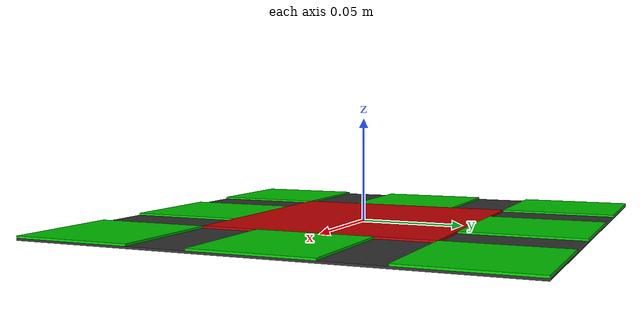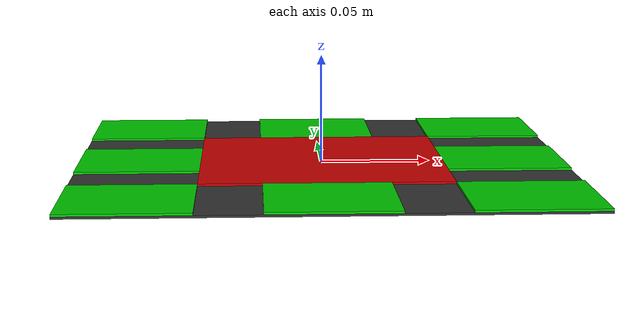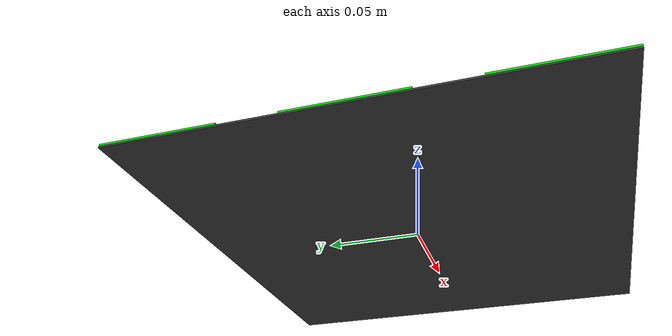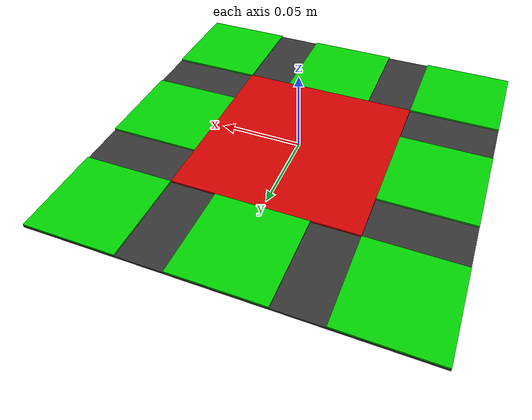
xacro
<robot name="aruco" xmlns:xacro="http://wiki.ros.org/xacro">

    <!-- arguments -->

    <xacro:arg name="id"            default="0" />
    <xacro:arg name="marker_prefix" default="aruco_" />
    <xacro:arg name="corner_prefix" default="corner_" />
    <xacro:arg name="length"        default="0.225" />

    <!-- constants -->

    <xacro:property name="id"            value="$(arg id)" />
    <xacro:property name="marker_prefix" value="$(arg marker_prefix)" />
    <xacro:property name="corner_prefix" value="$(arg corner_prefix)" />
    <xacro:property name="length"        value="$(arg length)" />

    <xacro:property name="marker_l"  value="${marker_prefix}${id}" />
    <xacro:property name="marker_m"  value="${marker_prefix}${id + 1}" />
    <xacro:property name="marker_s0" value="${marker_prefix}${id + 2}" />
    <xacro:property name="marker_s1" value="${marker_prefix}${id + 3}" />
    <xacro:property name="marker_s2" value="${marker_prefix}${id + 4}" />
    <xacro:property name="marker_s3" value="${marker_prefix}${id + 5}" />
    <xacro:property name="marker_s4" value="${marker_prefix}${id + 6}" />
    <xacro:property name="marker_s5" value="${marker_prefix}${id + 7}" />
    <xacro:property name="marker_s6" value="${marker_prefix}${id + 8}" />
    <xacro:property name="marker_s7" value="${marker_prefix}${id + 9}" />

    <xacro:property name="corner_l"  value="${corner_prefix}${id}" />
    <xacro:property name="corner_m"  value="${corner_prefix}${id + 1}" />
    <xacro:property name="corner_s0" value="${corner_prefix}${id + 2}" />
    <xacro:property name="corner_s1" value="${corner_prefix}${id + 3}" />
    <xacro:property name="corner_s2" value="${corner_prefix}${id + 4}" />
    <xacro:property name="corner_s3" value="${corner_prefix}${id + 5}" />
    <xacro:property name="corner_s4" value="${corner_prefix}${id + 6}" />
    <xacro:property name="corner_s5" value="${corner_prefix}${id + 7}" />
    <xacro:property name="corner_s6" value="${corner_prefix}${id + 8}" />
    <xacro:property name="corner_s7" value="${corner_prefix}${id + 9}" />

    <xacro:property name="length_125" value="${length * 0.125}" />
    <xacro:property name="length_25"  value="${length * 0.25}" />
    <xacro:property name="length_375" value="${length * 0.375}" />
    <xacro:property name="length_50"  value="${length * 0.5}" />
    <xacro:property name="length_75"  value="${length * 0.75}" />

    <!-- marker materials -->

    <xacro:macro name="make_material"
                 params="name rgba">
        <material name="${name}">
            <color rgba="${rgba}" />
        </material>
    </xacro:macro>

    <xacro:make_material name="black" rgba="0.2 0.2 0.2 1" />
    <xacro:make_material name="white" rgba="1.0 1.0 1.0 1" />
    <xacro:make_material name="red"   rgba="0.8 0.0 0.0 1" />
    <xacro:make_material name="green" rgba="0.0 0.8 0.0 1" />

    <!-- marker links -->

    <xacro:macro name="make_marker_link"
                 params="name
                         z_offset
                         size
                         material">
        <link name="${name}">
            <visual>
                <origin xyz="0 0 ${z_offset}" />
                <geometry>
                    <box size="${size}" />
                </geometry>
                <material name="${material}" />
            </visual>
        </link>
    </xacro:macro>

    <xacro:make_marker_link name="${marker_l}"  z_offset="0"     size="${length}    ${length}    0.001" material="black" />
    <xacro:make_marker_link name="${marker_m}"  z_offset="0.001" size="${length_50} ${length_50} 0.001" material="red" />
    <xacro:make_marker_link name="${marker_s0}" z_offset="0.001" size="${length_25} ${length_25} 0.001" material="green" />
    <xacro:make_marker_link name="${marker_s1}" z_offset="0.001" size="${length_25} ${length_25} 0.001" material="green" />
    <xacro:make_marker_link name="${marker_s2}" z_offset="0.001" size="${length_25} ${length_25} 0.001" material="green" />
    <xacro:make_marker_link name="${marker_s3}" z_offset="0.001" size="${length_25} ${length_25} 0.001" material="green" />
    <xacro:make_marker_link name="${marker_s4}" z_offset="0.001" size="${length_25} ${length_25} 0.001" material="green" />
    <xacro:make_marker_link name="${marker_s5}" z_offset="0.001" size="${length_25} ${length_25} 0.001" material="green" />
    <xacro:make_marker_link name="${marker_s6}" z_offset="0.001" size="${length_25} ${length_25} 0.001" material="green" />
    <xacro:make_marker_link name="${marker_s7}" z_offset="0.001" size="${length_25} ${length_25} 0.001" material="green" />

    <!-- joints from base to markers -->

    <xacro:macro name="make_fixed_joint"
                 params="xyz
                         parent
                         child">
        <joint name="${parent}_to_${child}" type="fixed">
            <origin xyz="${xyz}" />
            <parent link="${parent}" />
            <child link="${child}" />
        </joint>
    </xacro:macro>

    <xacro:make_fixed_joint xyz="0              0              0" parent="${marker_l}" child="${marker_m}" />
    <xacro:make_fixed_joint xyz="${-length_375} ${length_375}  0" parent="${marker_l}" child="${marker_s0}" />
    <xacro:make_fixed_joint xyz="0              ${length_375}  0" parent="${marker_l}" child="${marker_s1}" />
    <xacro:make_fixed_joint xyz="${length_375}  ${length_375}  0" parent="${marker_l}" child="${marker_s2}" />
    <xacro:make_fixed_joint xyz="${-length_375} 0              0" parent="${marker_l}" child="${marker_s3}" />
    <xacro:make_fixed_joint xyz="${length_375}  0              0" parent="${marker_l}" child="${marker_s4}" />
    <xacro:make_fixed_joint xyz="${-length_375} ${-length_375} 0" parent="${marker_l}" child="${marker_s5}" />
    <xacro:make_fixed_joint xyz="0              ${-length_375} 0" parent="${marker_l}" child="${marker_s6}" />
    <xacro:make_fixed_joint xyz="${length_375}  ${-length_375} 0" parent="${marker_l}" child="${marker_s7}" />

    <!-- corner of markers -->

    <xacro:macro name="make_corner"
                 params="name
                         xy_offset
                         marker">
        <link name="${name}" />
        <xacro:make_fixed_joint xyz="${xy_offset} ${xy_offset} 0" parent="${marker}" child="${name}" />
    </xacro:macro>

    <xacro:make_corner name="${corner_l}"  xy_offset="${length_50}"  marker="${marker_l}" />
    <xacro:make_corner name="${corner_m}"  xy_offset="${length_25}"  marker="${marker_m}" />
    <xacro:make_corner name="${corner_s0}" xy_offset="${length_125}" marker="${marker_s0}" />
    <xacro:make_corner name="${corner_s1}" xy_offset="${length_125}" marker="${marker_s1}" />
    <xacro:make_corner name="${corner_s2}" xy_offset="${length_125}" marker="${marker_s2}" />
    <xacro:make_corner name="${corner_s3}" xy_offset="${length_125}" marker="${marker_s3}" />
    <xacro:make_corner name="${corner_s4}" xy_offset="${length_125}" marker="${marker_s4}" />
    <xacro:make_corner name="${corner_s5}" xy_offset="${length_125}" marker="${marker_s5}" />
    <xacro:make_corner name="${corner_s6}" xy_offset="${length_125}" marker="${marker_s6}" />
    <xacro:make_corner name="${corner_s7}" xy_offset="${length_125}" marker="${marker_s7}" />

</robot>
